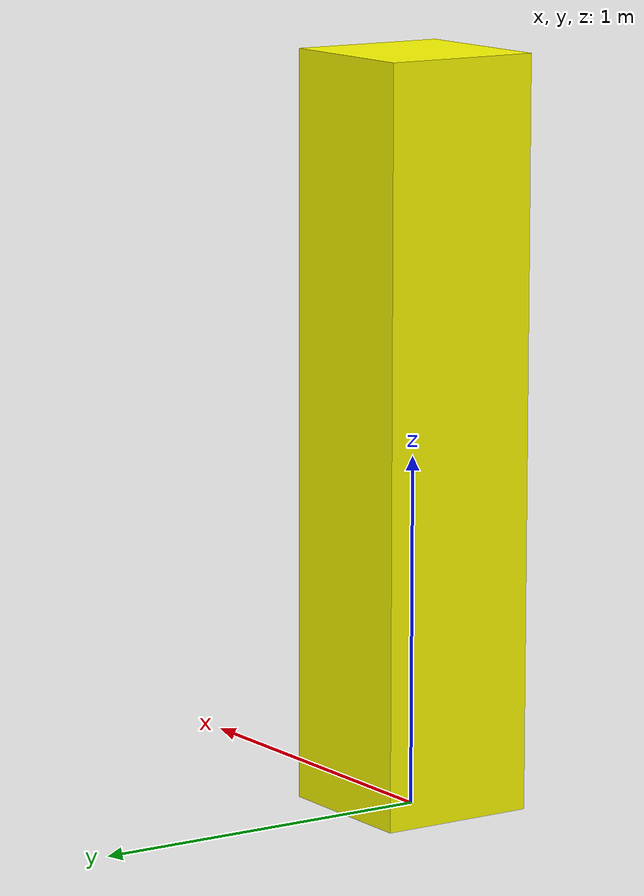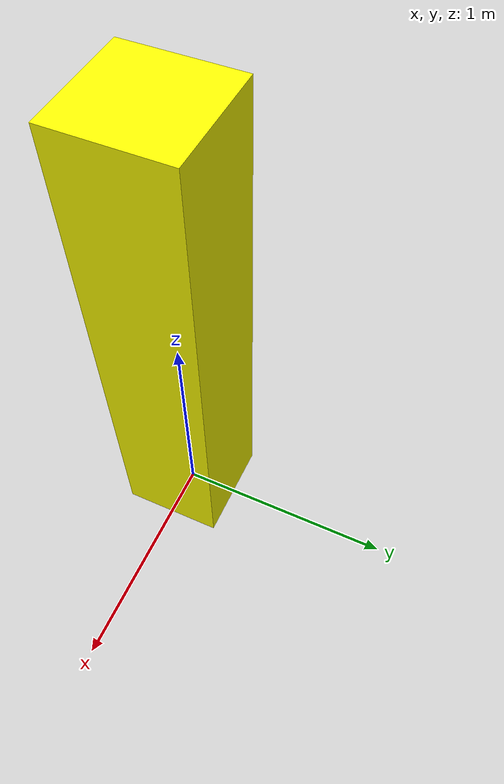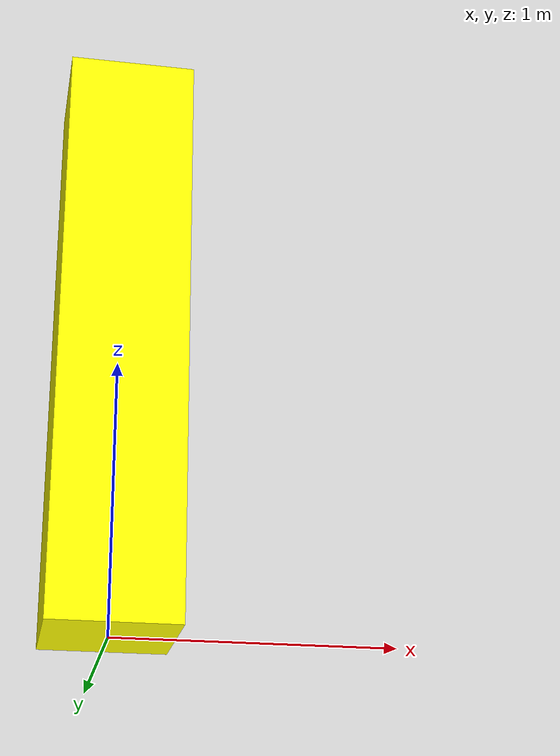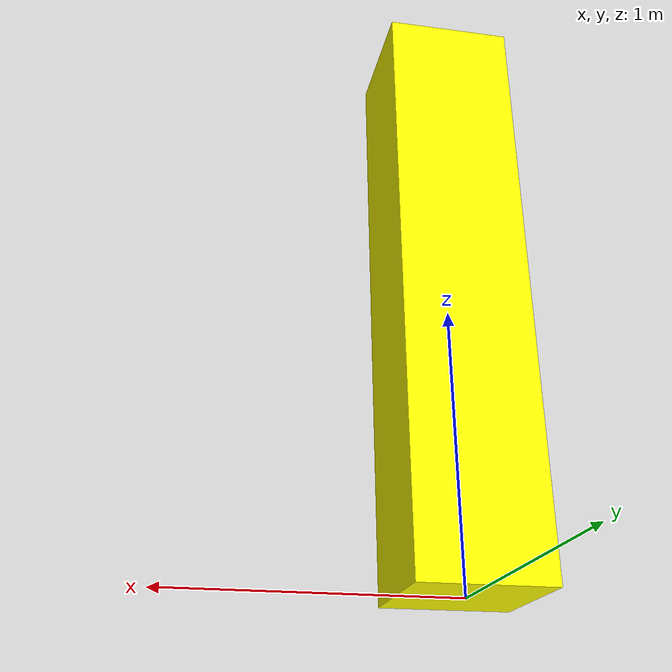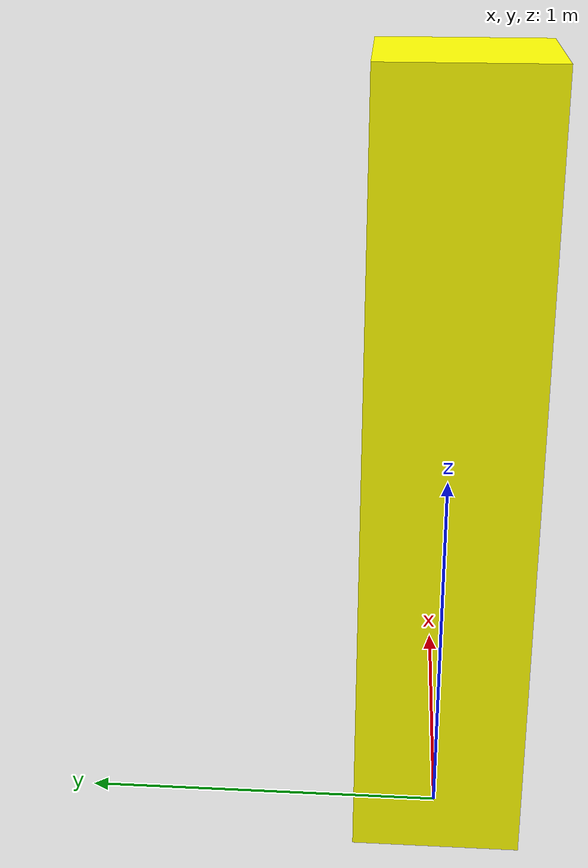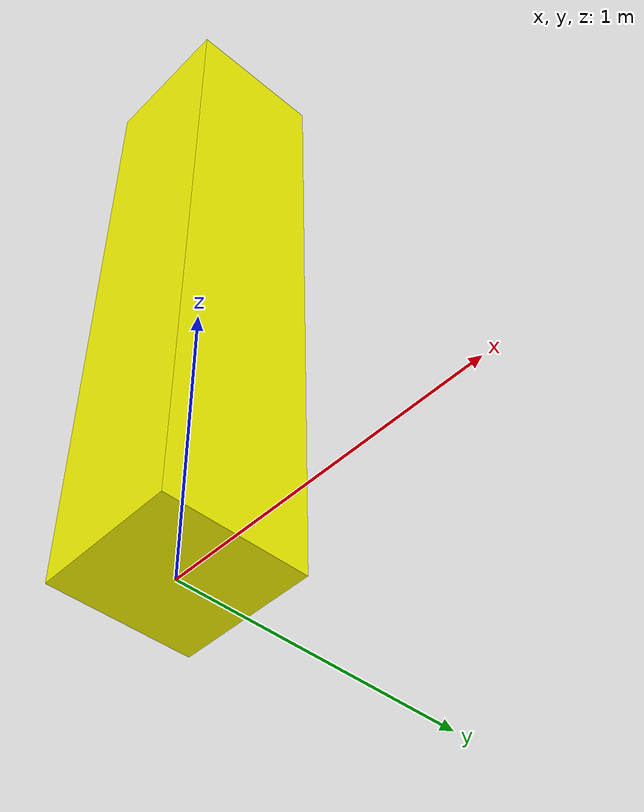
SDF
<?xml version="1.0" ?>
<sdf version="1.7">
  <model name="everblock_yellow">
    <static>true</static>
    <link name="block">
      <pose>0 0 1.0668 0 0 0</pose>
      <collision name="collision">
        <geometry>
          <box>
            <size>0.4572 0.4572 2.1336</size>
          </box>
        </geometry>
      </collision>
      <visual name="visual">
        <geometry>
          <mesh>
            <uri>model://everblock_yellow/meshes/everblock_yellow.dae</uri>
          </mesh>
        </geometry>
        <material>
          <ambient>1 1 0 1</ambient>
          <diffuse>1 1 0 1</diffuse>
          <specular>0.8 0.8 0.8 1</specular>
          <pbr>
            <metal>
              <roughness_map>model://everblock_yellow/meshes/textures/everblock_yellow_roughness.png</roughness_map>
              <ambient_occlusion_map>model://everblock_yellow/meshes/textures/everblock_yellow_ao.png</ambient_occlusion_map>
              <normal_map>model://everblock_yellow/meshes/textures/everblock_yellow_normal.png</normal_map>
            </metal>
          </pbr>
        </material>
      </visual>
    </link>
  </model>
</sdf>
<!-- vim: set et fenc=utf-8 ff=unix sts=0 sw=2 ts=2 : -->
